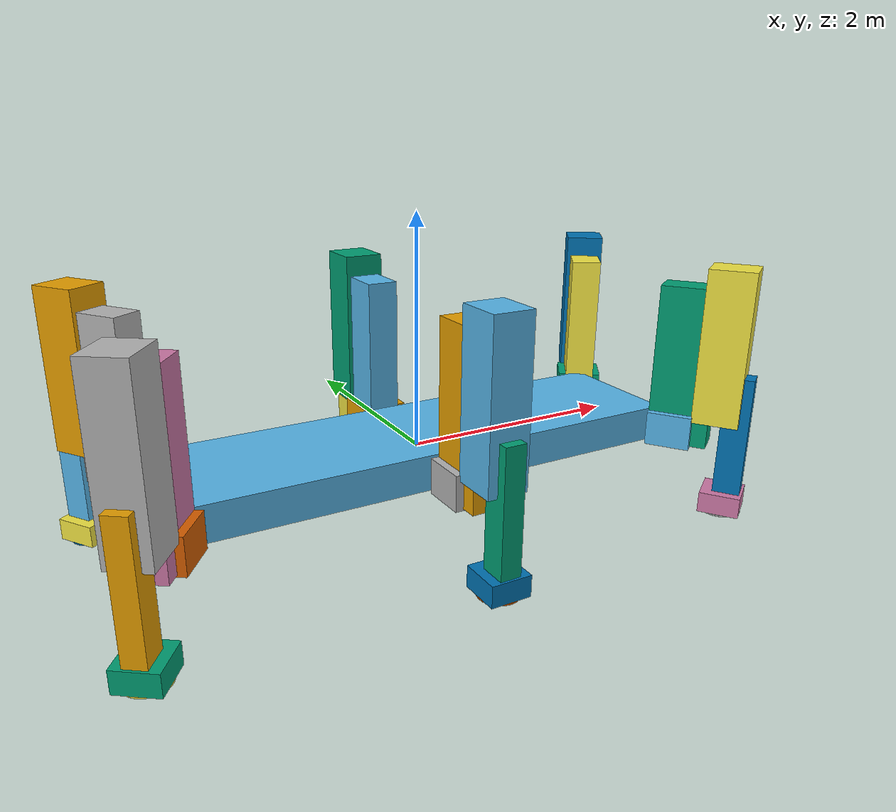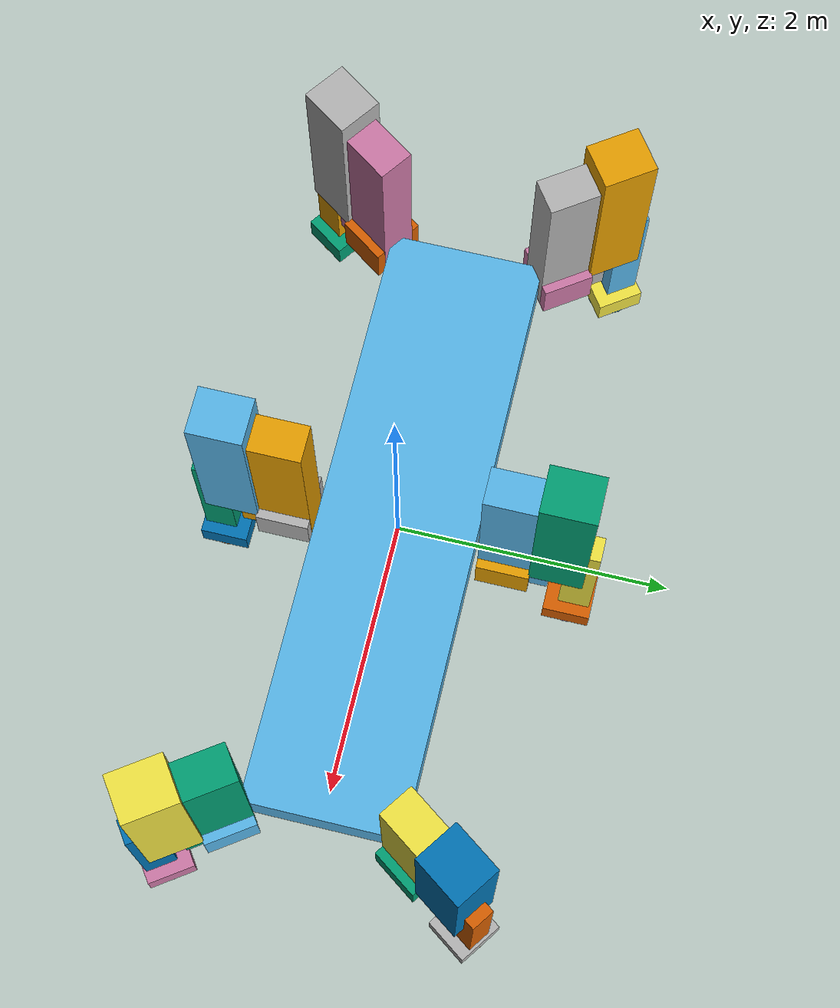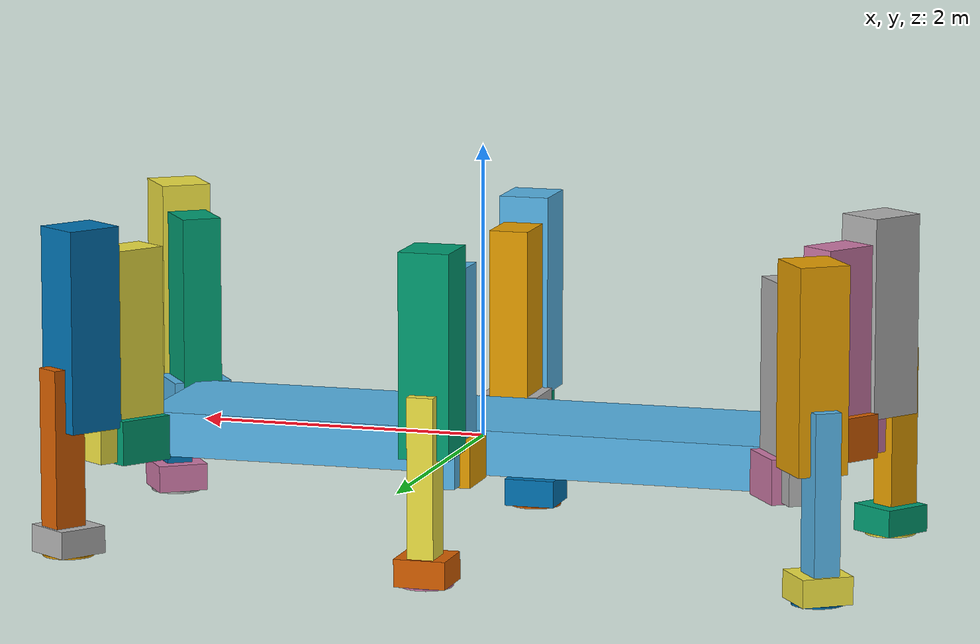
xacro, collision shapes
<?xml version="1.0" ?>
<robot xmlns:xacro="http://www.ros.org/wiki/xacro" name="stompy">

 <gazebo>
  <plugin name="gazebo_ros_control" filename="libgazebo_ros_control.so">
    <robotNamespace>/stompy</robotNamespace>
  </plugin>
  <plugin name="imu_plugin" filename="libgazebo_ros_imu.so">
    <alwaysOn>true</alwaysOn>
    <bodyName>body_link</bodyName>
    <topicName>imu/data</topicName>
    <serviceName>imu_service</serviceName>
    <gaussianNoise>0.0</gaussianNoise>
    <updateRate>20.0</updateRate>
  </plugin>
 </gazebo>

 <xacro:include filename="$(find stompy_description)/urdf/stompyleg_macro.urdf.xacro" />

 <link name="base_link" />
 <joint name="body" type="fixed">
  <origin xyz="0 0 0" rpy="0 0 0"/>
  <parent link="base_link" />
  <child link="body_link" />
 </joint>
 <link name="body_link">
    <inertial>
      <mass value="1823.41"/>
      <origin rpy="0  0  0" xyz="0     0     0"/>
      <inertia ixx="499.7" ixy="0.019" ixz="-172.0" iyy="3253.0" iyz="0.019" izz="3049.0"/>
    </inertial>
    <collision name="body_link_collision">
      <origin rpy="0  0  0" xyz="0     0     0"/>
      <geometry>
        <box size="4.478688 1.168400 0.304800"/>
      </geometry>
    </collision>
    <visual name="body_link_visual">
      <origin rpy="0  0  0" xyz="0  0  0"/>
      <geometry>
        <mesh filename="package://stompy_description/meshes/body.stl" scale="1.0 1.0 1.0"/>
      </geometry>
    </visual>
  </link>

  <xacro:leg name="fl" rpy="0 0 0.9599" xyz="2.2352  0.5842   -0.1000"/>
  <xacro:leg name="fr" rpy="0 0 -0.9599" xyz="2.2352 -0.5842   -0.1000"/>
  <xacro:leg name="ml" rpy="0 0 1.5706" xyz="0.0  0.6858   -0.1000"/>
  <xacro:leg name="mr" rpy="0 0 -1.5706" xyz="0.0 -0.6858   -0.1000"/>
  <xacro:leg name="rl" rpy="0 0 2.1816" xyz="-2.2352  0.5842  -0.1000"/>
  <xacro:leg name="rr" rpy="0 0 -2.1816" xyz="-2.2352 -0.5842  -0.1000"/>
</robot>

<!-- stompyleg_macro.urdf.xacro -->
<robot xmlns:xacro="http://www.ros.org/wiki/xacro">
 <xacro:property name="max_e" value="10000000"/>
 <xacro:property name="max_v" value="10"/>

 <xacro:macro name="leg" params="name rpy xyz"> <joint name="${name}_thigh" type="revolute">
    <parent link="${name}_hip_link"/>
    <child link="${name}_thigh_link"/>
    <origin rpy="0  0  0" xyz="0.279  0     0"/>
    <axis xyz="0  1  0"/>
    <limit effort="${max_e}" lower="0.0" upper="1.5708" velocity="${max_v}"/>
    <dynamics damping="10000.0" />
  </joint>
  <joint name="${name}_knee" type="revolute">
    <parent link="${name}_thigh_link"/>
    <child link="${name}_calf_upper_link"/>
    <origin rpy="0  0  0" xyz="0.143  0       1.364"/>
    <axis xyz="0  1  0"/>
    <limit effort="${max_e}" lower="-2.3736" upper="0.0" velocity="${max_v}"/>
    <dynamics damping="10000.0" />
  </joint>
  <joint name="${name}_calf" type="prismatic">
    <parent link="${name}_calf_upper_link"/>
    <child link="${name}_calf_lower_link"/>
    <origin rpy="0  0  0" xyz="0.203  0   -0.847"/>
    <axis xyz="0  0  1"/>
    <limit effort="10942" lower="0.0" upper="0.104" velocity="${max_v}"/>
    <dynamics damping="10000.0" />
  </joint>
  <joint name="${name}_ankle" type="revolute">
    <parent link="${name}_calf_lower_link"/>
    <child link="${name}_ankle_link"/>
    <origin rpy="0  0  0" xyz="0.02  0     -0.968"/>
    <axis xyz="0  1  0"/>
    <limit effort="${max_e}" lower="-1.3962" upper="1.3962" velocity="${max_v}"/>
    <dynamics damping="1.0" />
  </joint>
  <joint name="${name}_foot" type="revolute">
    <parent link="${name}_ankle_link"/>
    <child link="${name}_foot_link"/>
    <origin rpy="0  0  0" xyz="0      0     -0.0412"/>
    <axis xyz="1  0  0"/>
    <limit effort="${max_e}" lower="-1.3962" upper="1.3962" velocity="${max_v}"/>
    <dynamics damping="1.0" />
</joint>
  <joint name="${name}_pad" type="continuous">
    <parent link="${name}_foot_link"/>
    <child link="${name}_pad_link"/>
    <origin rpy="0 0 0" xyz="0 0 -0.153"/>
    <axis xyz="0 0 1"/>
  </joint>
  <link name="${name}_hip_link">
    <inertial>
      <mass value="28.231"/>
      <origin rpy="0  0  0" xyz="0.114006 0.000000 0.032923"/>
      <inertia ixx="0.417" ixy="0." ixz="0.026" iyy="0.327" iyz="0." izz="0.337"/>
    </inertial>
    <collision name="${name}_hip_link_collision">
      <origin rpy="0  0  0" xyz="0.1341685 -0.000000 0.096707"/>
      <geometry>
        <box size="0.388937 0.411136 0.304614"/>
      </geometry>
    </collision>
    <visual name="${name}_hip_link_visual">
      <origin rpy="0  0  0" xyz="0  0  0"/>
      <geometry>
          <mesh filename="package://stompy_description/meshes/hip.stl" scale="1.0 1.0 1.0"/>
      </geometry>
    </visual>
  </link>
  <link name="${name}_thigh_link">
    <inertial>
      <mass value="64.053"/>
      <origin rpy="0  0  0" xyz="-0.041591 -0.000000 0.526720"/>
      <inertia ixx="10.62" ixy="0." ixz="-0.34" iyy="10.92" iyz="0." izz="1.334"/>
    </inertial>
    <collision name="${name}_thigh_link_collision">
      <origin rpy="0  0  0" xyz="-0.078093 -0.000000 0.6820835"/>
      <geometry>
        <box size="0.525414 0.273050 1.446567"/>
      </geometry>
    </collision>
    <visual name="${name}_thigh_link_visual">
      <origin rpy="0  0  0" xyz="0  0  0"/>
      <geometry>
          <mesh filename="package://stompy_description/meshes/thigh.stl" scale="1.0 1.0 1.0"/>
      </geometry>
    </visual>
  </link>
  <link name="${name}_calf_upper_link">
    <inertial>
      <mass value="39.145"/>
      <origin rpy="0  0  0" xyz="0.035211 -0.000003 -0.339598"/>
      <inertia ixx="5.471" ixy="0." ixz="1.148" iyy="5.636" iyz="0." izz="0.775"/>
    </inertial>
    <collision name="${name}_calf_upper_link_collision">
      <origin rpy="0  0  0" xyz="0.09732 0.0 -0.470252"/>
      <geometry>
        <box size="0.397840 0.346075 1.385496"/>
      </geometry>
    </collision>
    <visual name="${name}_calf_upper_link_visual">
      <origin rpy="0  0  0" xyz="0  0  0"/>
      <geometry>
          <mesh filename="package://stompy_description/meshes/calf_upper.stl" scale="1.0 1.0 1.0"/>
      </geometry>
    </visual>
  </link>
  <link name="${name}_calf_lower_link">
    <inertial>
      <mass value="18.983"/>
      <origin rpy="0  0  0" xyz="0.048200 0.000000 -0.405153"/>
      <inertia ixx="1.827" ixy="0." ixz="0.243" iyy="1.859" iyz="0." izz="0.145"/>
    </inertial>
    <collision name="${name}_calf_lower_link_collision">
        <origin rpy="0  0  0" xyz="0.058576 0.000000 -0.4418265"/>
      <geometry>
        <box size="0.237352 0.180975 1.122347"/>
      </geometry>
    </collision>
    <visual name="${name}_calf_lower_link_visual">
      <origin rpy="0  0  0" xyz="0  0  0"/>
      <geometry>
          <mesh filename="package://stompy_description/meshes/calf_lower.stl" scale="1.0 1.0 1.0"/>
      </geometry>
    </visual>
  </link>
  <link name="${name}_ankle_link">
    <inertial>
      <mass value="1.391"/>
      <origin rpy="0  0  0" xyz="0       0      -0.01638"/>
      <inertia ixx="0.002" ixy="0" ixz="0" iyy="0.001" iyz="0" izz="0.002"/>
    </inertial>
    <collision name="${name}_ankle_link_collision">
      <origin rpy="0  0  0" xyz="0       0      -0.019693"/>
      <geometry>
        <box size="0.073025 0.127000 0.100314"/>
      </geometry>
    </collision>
    <visual name="${name}_ankle_link_visual">
      <origin rpy="0  0  0" xyz="0  0  0"/>
      <geometry>
          <mesh filename="package://stompy_description/meshes/ankle.stl" scale="1.0 1.0 1.0"/>
      </geometry>
    </visual>
  </link>
  <link name="${name}_foot_link">
    <inertial>
      <mass value="9.307"/>
      <origin rpy="0 0 0" xyz="0.000000 0.000000 -0.114469"/>
      <inertia ixx="0.069" ixy="0" ixz="0" iyy="0.069" iyz="0" izz="0.102"/>
    </inertial>
    <collision name="${name}_foot_link_collision">
      <origin rpy="0  0  0" xyz="0       0      -0.05495"/>
      <geometry>
        <box size="0.355474 0.355348 0.188913"/>
      </geometry>
    </collision>
    <visual name="${name}_foot_link_visual">
      <origin rpy="0  0  0" xyz="0  0  0"/>
      <geometry>
          <mesh filename="package://stompy_description/meshes/foot.stl" scale="1.0 1.0 1.0"/>
      </geometry>
    </visual>
</link>
  <gazebo reference="${name}_foot_link">
    <mu1>50</mu1>
    <mu2>50</mu2>
    <maxVel>1000.0</maxVel>
    <minDepth>0.0000003</minDepth>
  </gazebo>
  <link name="${name}_pad_link">
    <inertial>
      <mass value="1"/>
      <origin rpy="0 0 0" xyz="0 0 -0.00635"/>
      <inertia ixx="0.00348" ixy="0" ixz="0" iyy="0.00348" iyz="0" izz="0.00694"/>
    </inertial>
    <collision name="{$prefix}${name}_pad_link_collision">
      <origin rpy="0 0 0" xyz="0 0 -0.00635"/>
      <geometry>
        <cylinder length="0.0127" radius="0.1778"/>
      </geometry>
    </collision>
    <visual name="${name}__pad_link_visual">
      <origin rpy="0 0 0" xyz="0 0 -0.00635"/>
      <geometry>
        <cylinder length="0.0127" radius="0.1778"/>
      </geometry>
    </visual>
  </link>
  <gazebo reference="${name}_pad_link">
    <mu1>500</mu1>
    <mu2>500</mu2>
    <maxVel>1000.0</maxVel>
    <minDepth>0.0000003</minDepth>
  </gazebo>
  <joint name="${name}_hip" type="revolute">
    <parent link="body_link"/>
    <child link="${name}_hip_link"/>
    <origin rpy="${rpy}" xyz="${xyz}"/>
    <axis xyz="0  0  1"/>
    <limit effort="${max_e}" lower="-1.178" upper="1.178" velocity="${max_v}"/>
    <dynamics damping="10000.0" />
  </joint>
  <!-- transmission added for gazebo_ros_control, needed for every joint -->
  <transmission name="${name}_hip_tran">
    <type>transmission_interface/SimpleTransmission</type>
    <joint name="${name}_hip">
      <hardwareInterface>EffortJointInterface</hardwareInterface>
    </joint>
    <actuator name="${name}_hip_motor">
      <hardwareInterface>EffortJointInterface</hardwareInterface>
      <mechanicalReduction>1</mechanicalReduction>
    </actuator>
  </transmission>
  <transmission name="${name}_thigh_tran">
    <type>transmission_interface/SimpleTransmission</type>
    <joint name="${name}_thigh">
      <hardwareInterface>EffortJointInterface</hardwareInterface>
    </joint>
    <actuator name="${name}_thigh_motor">
      <hardwareInterface>EffortJointInterface</hardwareInterface>
      <mechanicalReduction>1</mechanicalReduction>
    </actuator>
  </transmission>
  <transmission name="${name}_knee_tran">
    <type>transmission_interface/SimpleTransmission</type>
    <joint name="${name}_knee">
      <hardwareInterface>EffortJointInterface</hardwareInterface>
    </joint>
    <actuator name="${name}_knee_motor">
      <hardwareInterface>EffortJointInterface</hardwareInterface>
      <mechanicalReduction>1</mechanicalReduction>
    </actuator>
  </transmission>
  <transmission name="${name}_calf_tran">
    <type>transmission_interface/SimpleTransmission</type>
    <joint name="${name}_calf">
      <hardwareInterface>EffortJointInterface</hardwareInterface>
    </joint>
    <actuator name="${name}_calf_motor">
      <hardwareInterface>EffortJointInterface</hardwareInterface>
      <mechanicalReduction>1</mechanicalReduction>
    </actuator>
  </transmission>
 </xacro:macro>

</robot>
